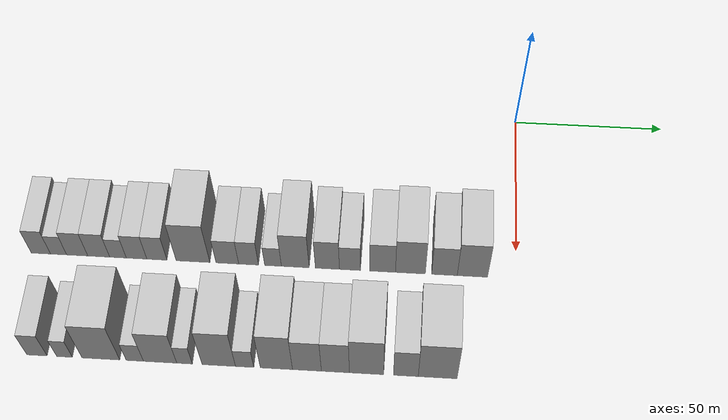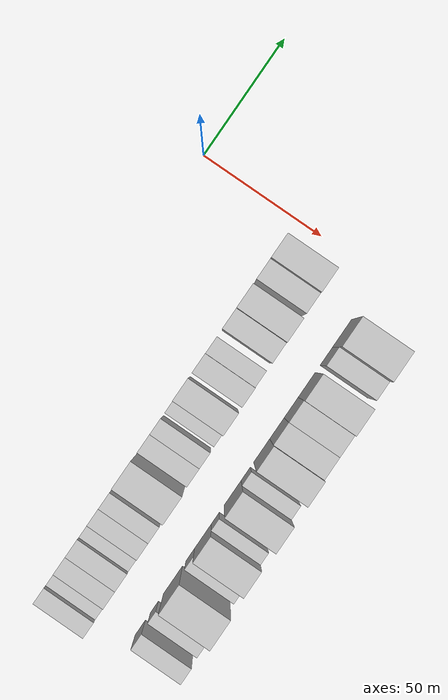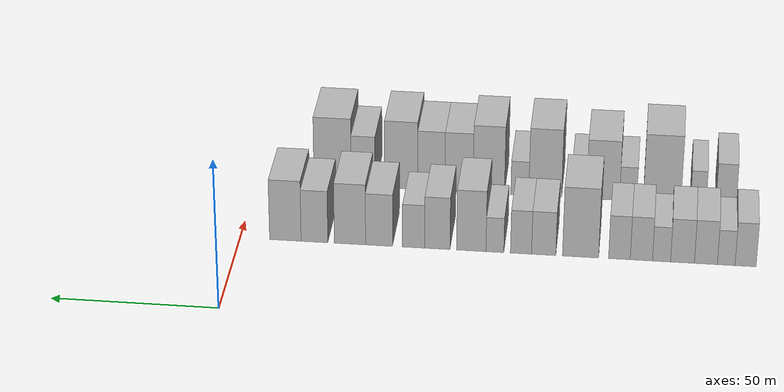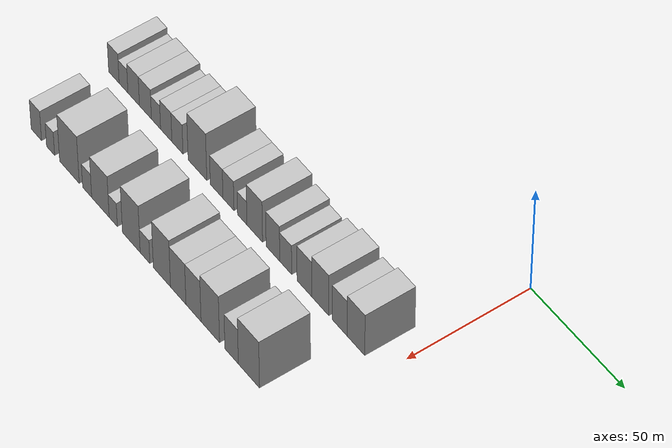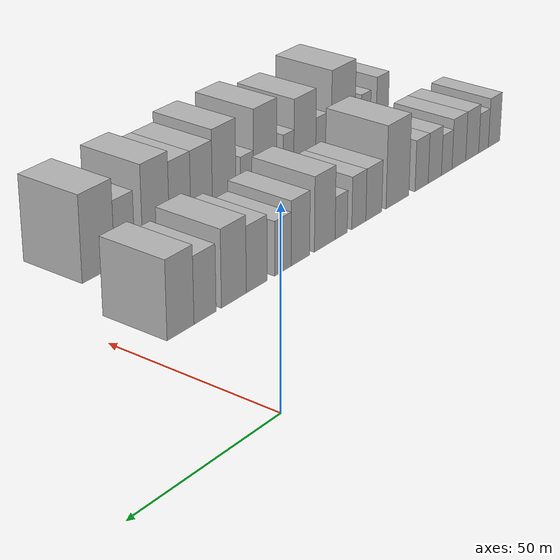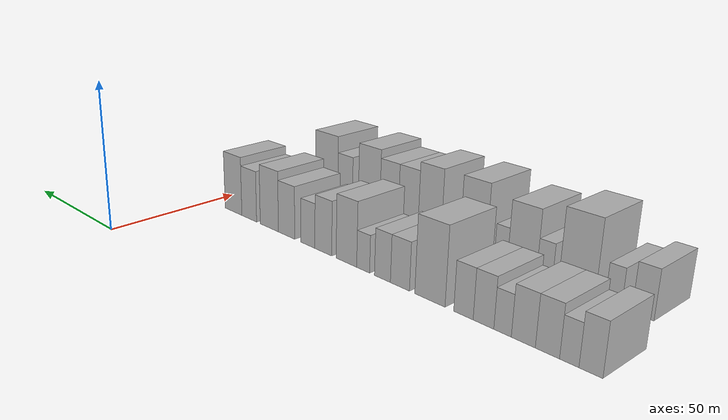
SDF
<sdf version="1.6">
 <world name="default">
  <model name="building_15">
   <static>1</static>
   <pose>50.0000 -153.3467 0 0.000000 0.000000 0.000000</pose>
   <link name="link">
    <pose>0 0 7.50 0 0 0</pose>
    <collision name="collision"><geometry><box><size>20.0000 6.2819 15.0000</size></box></geometry></collision>
    <visual name="visual">
     <cast_shadows>0</cast_shadows>
     <geometry><box><size>20.0000 6.2819 15.0000</size></box></geometry>
     <material>
      <script>
       <uri>model://HANNAS_wall/materials/scripts</uri>
       <uri>model://HANNAS_wall/materials/textures</uri>
       <name>vrc/HANNAS_wall</name>
      </script>
     </material>
    </visual>
   </link>
  </model>
  <model name="building_16">
   <static>1</static>
   <pose>50.0000 -147.5695 0 0.000000 0.000000 0.000000</pose>
   <link name="link">
    <pose>0 0 6.00 0 0 0</pose>
    <collision name="collision"><geometry><box><size>20.0000 5.2724 12.0000</size></box></geometry></collision>
    <visual name="visual">
     <cast_shadows>0</cast_shadows>
     <geometry><box><size>20.0000 5.2724 12.0000</size></box></geometry>
     <material>
      <script>
       <uri>model://HANNAS_wall/materials/scripts</uri>
       <uri>model://HANNAS_wall/materials/textures</uri>
       <name>vrc/HANNAS_wall</name>
      </script>
     </material>
    </visual>
   </link>
  </model>
  <model name="building_17">
   <static>1</static>
   <pose>50.0000 -141.4911 0 0.000000 0.000000 0.000000</pose>
   <link name="link">
    <pose>0 0 7.50 0 0 0</pose>
    <collision name="collision"><geometry><box><size>20.0000 6.8844 15.0000</size></box></geometry></collision>
    <visual name="visual">
     <cast_shadows>0</cast_shadows>
     <geometry><box><size>20.0000 6.8844 15.0000</size></box></geometry>
     <material>
      <script>
       <uri>model://HANNAS_wall/materials/scripts</uri>
       <uri>model://HANNAS_wall/materials/textures</uri>
       <name>vrc/HANNAS_wall</name>
      </script>
     </material>
    </visual>
   </link>
  </model>
  <model name="building_18">
   <static>1</static>
   <pose>50.0000 -134.4812 0 0.000000 0.000000 0.000000</pose>
   <link name="link">
    <pose>0 0 7.50 0 0 0</pose>
    <collision name="collision"><geometry><box><size>20.0000 7.1355 15.0000</size></box></geometry></collision>
    <visual name="visual">
     <cast_shadows>0</cast_shadows>
     <geometry><box><size>20.0000 7.1355 15.0000</size></box></geometry>
     <material>
      <script>
       <uri>model://HANNAS_wall/materials/scripts</uri>
       <uri>model://HANNAS_wall/materials/textures</uri>
       <name>vrc/HANNAS_wall</name>
      </script>
     </material>
    </visual>
   </link>
  </model>
  <model name="building_19">
   <static>1</static>
   <pose>50.0000 -128.2064 0 0.000000 0.000000 0.000000</pose>
   <link name="link">
    <pose>0 0 6.00 0 0 0</pose>
    <collision name="collision"><geometry><box><size>20.0000 5.4142 12.0000</size></box></geometry></collision>
    <visual name="visual">
     <cast_shadows>0</cast_shadows>
     <geometry><box><size>20.0000 5.4142 12.0000</size></box></geometry>
     <material>
      <script>
       <uri>model://HANNAS_wall/materials/scripts</uri>
       <uri>model://HANNAS_wall/materials/textures</uri>
       <name>vrc/HANNAS_wall</name>
      </script>
     </material>
    </visual>
   </link>
  </model>
  <model name="building_20">
   <static>1</static>
   <pose>50.0000 -122.1646 0 0.000000 0.000000 0.000000</pose>
   <link name="link">
    <pose>0 0 7.50 0 0 0</pose>
    <collision name="collision"><geometry><box><size>20.0000 6.6693 15.0000</size></box></geometry></collision>
    <visual name="visual">
     <cast_shadows>0</cast_shadows>
     <geometry><box><size>20.0000 6.6693 15.0000</size></box></geometry>
     <material>
      <script>
       <uri>model://HANNAS_wall/materials/scripts</uri>
       <uri>model://HANNAS_wall/materials/textures</uri>
       <name>vrc/HANNAS_wall</name>
      </script>
     </material>
    </visual>
   </link>
  </model>
  <model name="building_21">
   <static>1</static>
   <pose>50.0000 -115.5677 0 0.000000 0.000000 0.000000</pose>
   <link name="link">
    <pose>0 0 7.50 0 0 0</pose>
    <collision name="collision"><geometry><box><size>20.0000 6.5244 15.0000</size></box></geometry></collision>
    <visual name="visual">
     <cast_shadows>0</cast_shadows>
     <geometry><box><size>20.0000 6.5244 15.0000</size></box></geometry>
     <material>
      <script>
       <uri>model://HANNAS_wall/materials/scripts</uri>
       <uri>model://HANNAS_wall/materials/textures</uri>
       <name>vrc/HANNAS_wall</name>
      </script>
     </material>
    </visual>
   </link>
  </model>
  <model name="building_22">
   <static>1</static>
   <pose>50.0000 -103.8464 0 0.000000 0.000000 0.000000</pose>
   <link name="link">
    <pose>0 0 12.00 0 0 0</pose>
    <collision name="collision"><geometry><box><size>20.0000 10.9184 24.0000</size></box></geometry></collision>
    <visual name="visual">
     <cast_shadows>0</cast_shadows>
     <geometry><box><size>20.0000 10.9184 24.0000</size></box></geometry>
     <material>
      <script>
       <uri>model://HANNAS_wall/materials/scripts</uri>
       <uri>model://HANNAS_wall/materials/textures</uri>
       <name>vrc/HANNAS_wall</name>
      </script>
     </material>
    </visual>
   </link>
  </model>
  <model name="building_23">
   <static>1</static>
   <pose>50.0000 -92.7179 0 0.000000 0.000000 0.000000</pose>
   <link name="link">
    <pose>0 0 7.50 0 0 0</pose>
    <collision name="collision"><geometry><box><size>20.0000 7.3385 15.0000</size></box></geometry></collision>
    <visual name="visual">
     <cast_shadows>0</cast_shadows>
     <geometry><box><size>20.0000 7.3385 15.0000</size></box></geometry>
     <material>
      <script>
       <uri>model://HANNAS_wall/materials/scripts</uri>
       <uri>model://HANNAS_wall/materials/textures</uri>
       <name>vrc/HANNAS_wall</name>
      </script>
     </material>
    </visual>
   </link>
  </model>
  <model name="building_24">
   <static>1</static>
   <pose>50.0000 -85.8513 0 0.000000 0.000000 0.000000</pose>
   <link name="link">
    <pose>0 0 7.50 0 0 0</pose>
    <collision name="collision"><geometry><box><size>20.0000 6.3947 15.0000</size></box></geometry></collision>
    <visual name="visual">
     <cast_shadows>0</cast_shadows>
     <geometry><box><size>20.0000 6.3947 15.0000</size></box></geometry>
     <material>
      <script>
       <uri>model://HANNAS_wall/materials/scripts</uri>
       <uri>model://HANNAS_wall/materials/textures</uri>
       <name>vrc/HANNAS_wall</name>
      </script>
     </material>
    </visual>
   </link>
  </model>
  <model name="building_25">
   <static>1</static>
   <pose>50.0000 -77.9484 0 0.000000 0.000000 0.000000</pose>
   <link name="link">
    <pose>0 0 6.00 0 0 0</pose>
    <collision name="collision"><geometry><box><size>20.0000 5.4112 12.0000</size></box></geometry></collision>
    <visual name="visual">
     <cast_shadows>0</cast_shadows>
     <geometry><box><size>20.0000 5.4112 12.0000</size></box></geometry>
     <material>
      <script>
       <uri>model://HANNAS_wall/materials/scripts</uri>
       <uri>model://HANNAS_wall/materials/textures</uri>
       <name>vrc/HANNAS_wall</name>
      </script>
     </material>
    </visual>
   </link>
  </model>
  <model name="building_26">
   <static>1</static>
   <pose>50.0000 -70.7677 0 0.000000 0.000000 0.000000</pose>
   <link name="link">
    <pose>0 0 10.50 0 0 0</pose>
    <collision name="collision"><geometry><box><size>20.0000 8.9503 21.0000</size></box></geometry></collision>
    <visual name="visual">
     <cast_shadows>0</cast_shadows>
     <geometry><box><size>20.0000 8.9503 21.0000</size></box></geometry>
     <material>
      <script>
       <uri>model://HANNAS_wall/materials/scripts</uri>
       <uri>model://HANNAS_wall/materials/textures</uri>
       <name>vrc/HANNAS_wall</name>
      </script>
     </material>
    </visual>
   </link>
  </model>
  <model name="building_27">
   <static>1</static>
   <pose>50.0000 -60.4169 0 0.000000 0.000000 0.000000</pose>
   <link name="link">
    <pose>0 0 9.00 0 0 0</pose>
    <collision name="collision"><geometry><box><size>20.0000 7.7512 18.0000</size></box></geometry></collision>
    <visual name="visual">
     <cast_shadows>0</cast_shadows>
     <geometry><box><size>20.0000 7.7512 18.0000</size></box></geometry>
     <material>
      <script>
       <uri>model://HANNAS_wall/materials/scripts</uri>
       <uri>model://HANNAS_wall/materials/textures</uri>
       <name>vrc/HANNAS_wall</name>
      </script>
     </material>
    </visual>
   </link>
  </model>
  <model name="building_28">
   <static>1</static>
   <pose>50.0000 -53.1641 0 0.000000 0.000000 0.000000</pose>
   <link name="link">
    <pose>0 0 7.50 0 0 0</pose>
    <collision name="collision"><geometry><box><size>20.0000 6.7545 15.0000</size></box></geometry></collision>
    <visual name="visual">
     <cast_shadows>0</cast_shadows>
     <geometry><box><size>20.0000 6.7545 15.0000</size></box></geometry>
     <material>
      <script>
       <uri>model://HANNAS_wall/materials/scripts</uri>
       <uri>model://HANNAS_wall/materials/textures</uri>
       <name>vrc/HANNAS_wall</name>
      </script>
     </material>
    </visual>
   </link>
  </model>
  <model name="building_29">
   <static>1</static>
   <pose>50.0000 -42.6650 0 0.000000 0.000000 0.000000</pose>
   <link name="link">
    <pose>0 0 9.00 0 0 0</pose>
    <collision name="collision"><geometry><box><size>20.0000 8.2437 18.0000</size></box></geometry></collision>
    <visual name="visual">
     <cast_shadows>0</cast_shadows>
     <geometry><box><size>20.0000 8.2437 18.0000</size></box></geometry>
     <material>
      <script>
       <uri>model://HANNAS_wall/materials/scripts</uri>
       <uri>model://HANNAS_wall/materials/textures</uri>
       <name>vrc/HANNAS_wall</name>
      </script>
     </material>
    </visual>
   </link>
  </model>
  <model name="building_30">
   <static>1</static>
   <pose>50.0000 -33.7552 0 0.000000 0.000000 0.000000</pose>
   <link name="link">
    <pose>0 0 10.50 0 0 0</pose>
    <collision name="collision"><geometry><box><size>20.0000 9.5758 21.0000</size></box></geometry></collision>
    <visual name="visual">
     <cast_shadows>0</cast_shadows>
     <geometry><box><size>20.0000 9.5758 21.0000</size></box></geometry>
     <material>
      <script>
       <uri>model://HANNAS_wall/materials/scripts</uri>
       <uri>model://HANNAS_wall/materials/textures</uri>
       <name>vrc/HANNAS_wall</name>
      </script>
     </material>
    </visual>
   </link>
  </model>
  <model name="building_31">
   <static>1</static>
   <pose>50.0000 -22.8692 0 0.000000 0.000000 0.000000</pose>
   <link name="link">
    <pose>0 0 9.00 0 0 0</pose>
    <collision name="collision"><geometry><box><size>20.0000 8.1962 18.0000</size></box></geometry></collision>
    <visual name="visual">
     <cast_shadows>0</cast_shadows>
     <geometry><box><size>20.0000 8.1962 18.0000</size></box></geometry>
     <material>
      <script>
       <uri>model://HANNAS_wall/materials/scripts</uri>
       <uri>model://HANNAS_wall/materials/textures</uri>
       <name>vrc/HANNAS_wall</name>
      </script>
     </material>
    </visual>
   </link>
  </model>
  <model name="building_32">
   <static>1</static>
   <pose>50.0000 -13.9225 0 0.000000 0.000000 0.000000</pose>
   <link name="link">
    <pose>0 0 10.50 0 0 0</pose>
    <collision name="collision"><geometry><box><size>20.0000 9.6973 21.0000</size></box></geometry></collision>
    <visual name="visual">
     <cast_shadows>0</cast_shadows>
     <geometry><box><size>20.0000 9.6973 21.0000</size></box></geometry>
     <material>
      <script>
       <uri>model://HANNAS_wall/materials/scripts</uri>
       <uri>model://HANNAS_wall/materials/textures</uri>
       <name>vrc/HANNAS_wall</name>
      </script>
     </material>
    </visual>
   </link>
  </model>
  <model name="building_84">
   <static>1</static>
   <pose>85.0000 -147.5368 0 0.000000 0.000000 0.000000</pose>
   <link name="link">
    <pose>0 0 7.50 0 0 0</pose>
    <collision name="collision"><geometry><box><size>20.0000 6.2699 15.0000</size></box></geometry></collision>
    <visual name="visual">
     <cast_shadows>0</cast_shadows>
     <geometry><box><size>20.0000 6.2699 15.0000</size></box></geometry>
     <material>
      <script>
       <uri>model://HANNAS_wall/materials/scripts</uri>
       <uri>model://HANNAS_wall/materials/textures</uri>
       <name>vrc/HANNAS_wall</name>
      </script>
     </material>
    </visual>
   </link>
  </model>
  <model name="building_85">
   <static>1</static>
   <pose>85.0000 -138.9657 0 0.000000 0.000000 0.000000</pose>
   <link name="link">
    <pose>0 0 6.00 0 0 0</pose>
    <collision name="collision"><geometry><box><size>20.0000 4.8723 12.0000</size></box></geometry></collision>
    <visual name="visual">
     <cast_shadows>0</cast_shadows>
     <geometry><box><size>20.0000 4.8723 12.0000</size></box></geometry>
     <material>
      <script>
       <uri>model://HANNAS_wall/materials/scripts</uri>
       <uri>model://HANNAS_wall/materials/textures</uri>
       <name>vrc/HANNAS_wall</name>
      </script>
     </material>
    </visual>
   </link>
  </model>
  <model name="building_86">
   <static>1</static>
   <pose>85.0000 -127.6706 0 0.000000 0.000000 0.000000</pose>
   <link name="link">
    <pose>0 0 12.00 0 0 0</pose>
    <collision name="collision"><geometry><box><size>20.0000 11.7180 24.0000</size></box></geometry></collision>
    <visual name="visual">
     <cast_shadows>0</cast_shadows>
     <geometry><box><size>20.0000 11.7180 24.0000</size></box></geometry>
     <material>
      <script>
       <uri>model://HANNAS_wall/materials/scripts</uri>
       <uri>model://HANNAS_wall/materials/textures</uri>
       <name>vrc/HANNAS_wall</name>
      </script>
     </material>
    </visual>
   </link>
  </model>
  <model name="building_87">
   <static>1</static>
   <pose>85.0000 -117.1279 0 0.000000 0.000000 0.000000</pose>
   <link name="link">
    <pose>0 0 6.00 0 0 0</pose>
    <collision name="collision"><geometry><box><size>20.0000 5.3674 12.0000</size></box></geometry></collision>
    <visual name="visual">
     <cast_shadows>0</cast_shadows>
     <geometry><box><size>20.0000 5.3674 12.0000</size></box></geometry>
     <material>
      <script>
       <uri>model://HANNAS_wall/materials/scripts</uri>
       <uri>model://HANNAS_wall/materials/textures</uri>
       <name>vrc/HANNAS_wall</name>
      </script>
     </material>
    </visual>
   </link>
  </model>
  <model name="building_88">
   <static>1</static>
   <pose>85.0000 -109.2899 0 0.000000 0.000000 0.000000</pose>
   <link name="link">
    <pose>0 0 10.50 0 0 0</pose>
    <collision name="collision"><geometry><box><size>20.0000 10.3087 21.0000</size></box></geometry></collision>
    <visual name="visual">
     <cast_shadows>0</cast_shadows>
     <geometry><box><size>20.0000 10.3087 21.0000</size></box></geometry>
     <material>
      <script>
       <uri>model://HANNAS_wall/materials/scripts</uri>
       <uri>model://HANNAS_wall/materials/textures</uri>
       <name>vrc/HANNAS_wall</name>
      </script>
     </material>
    </visual>
   </link>
  </model>
  <model name="building_89">
   <static>1</static>
   <pose>85.0000 -101.7252 0 0.000000 0.000000 0.000000</pose>
   <link name="link">
    <pose>0 0 6.00 0 0 0</pose>
    <collision name="collision"><geometry><box><size>20.0000 4.8205 12.0000</size></box></geometry></collision>
    <visual name="visual">
     <cast_shadows>0</cast_shadows>
     <geometry><box><size>20.0000 4.8205 12.0000</size></box></geometry>
     <material>
      <script>
       <uri>model://HANNAS_wall/materials/scripts</uri>
       <uri>model://HANNAS_wall/materials/textures</uri>
       <name>vrc/HANNAS_wall</name>
      </script>
     </material>
    </visual>
   </link>
  </model>
  <model name="building_90">
   <static>1</static>
   <pose>85.0000 -91.1548 0 0.000000 0.000000 0.000000</pose>
   <link name="link">
    <pose>0 0 12.00 0 0 0</pose>
    <collision name="collision"><geometry><box><size>20.0000 10.3204 24.0000</size></box></geometry></collision>
    <visual name="visual">
     <cast_shadows>0</cast_shadows>
     <geometry><box><size>20.0000 10.3204 24.0000</size></box></geometry>
     <material>
      <script>
       <uri>model://HANNAS_wall/materials/scripts</uri>
       <uri>model://HANNAS_wall/materials/textures</uri>
       <name>vrc/HANNAS_wall</name>
      </script>
     </material>
    </visual>
   </link>
  </model>
  <model name="building_91">
   <static>1</static>
   <pose>85.0000 -83.1729 0 0.000000 0.000000 0.000000</pose>
   <link name="link">
    <pose>0 0 6.00 0 0 0</pose>
    <collision name="collision"><geometry><box><size>20.0000 5.6435 12.0000</size></box></geometry></collision>
    <visual name="visual">
     <cast_shadows>0</cast_shadows>
     <geometry><box><size>20.0000 5.6435 12.0000</size></box></geometry>
     <material>
      <script>
       <uri>model://HANNAS_wall/materials/scripts</uri>
       <uri>model://HANNAS_wall/materials/textures</uri>
       <name>vrc/HANNAS_wall</name>
      </script>
     </material>
    </visual>
   </link>
  </model>
  <model name="building_92">
   <static>1</static>
   <pose>85.0000 -73.3948 0 0.000000 0.000000 0.000000</pose>
   <link name="link">
    <pose>0 0 12.00 0 0 0</pose>
    <collision name="collision"><geometry><box><size>20.0000 9.9127 24.0000</size></box></geometry></collision>
    <visual name="visual">
     <cast_shadows>0</cast_shadows>
     <geometry><box><size>20.0000 9.9127 24.0000</size></box></geometry>
     <material>
      <script>
       <uri>model://HANNAS_wall/materials/scripts</uri>
       <uri>model://HANNAS_wall/materials/textures</uri>
       <name>vrc/HANNAS_wall</name>
      </script>
     </material>
    </visual>
   </link>
  </model>
  <model name="building_93">
   <static>1</static>
   <pose>85.0000 -63.9977 0 0.000000 0.000000 0.000000</pose>
   <link name="link">
    <pose>0 0 10.50 0 0 0</pose>
    <collision name="collision"><geometry><box><size>20.0000 8.8815 21.0000</size></box></geometry></collision>
    <visual name="visual">
     <cast_shadows>0</cast_shadows>
     <geometry><box><size>20.0000 8.8815 21.0000</size></box></geometry>
     <material>
      <script>
       <uri>model://HANNAS_wall/materials/scripts</uri>
       <uri>model://HANNAS_wall/materials/textures</uri>
       <name>vrc/HANNAS_wall</name>
      </script>
     </material>
    </visual>
   </link>
  </model>
  <model name="building_94">
   <static>1</static>
   <pose>85.0000 -55.2545 0 0.000000 0.000000 0.000000</pose>
   <link name="link">
    <pose>0 0 10.50 0 0 0</pose>
    <collision name="collision"><geometry><box><size>20.0000 8.6048 21.0000</size></box></geometry></collision>
    <visual name="visual">
     <cast_shadows>0</cast_shadows>
     <geometry><box><size>20.0000 8.6048 21.0000</size></box></geometry>
     <material>
      <script>
       <uri>model://HANNAS_wall/materials/scripts</uri>
       <uri>model://HANNAS_wall/materials/textures</uri>
       <name>vrc/HANNAS_wall</name>
      </script>
     </material>
    </visual>
   </link>
  </model>
  <model name="building_95">
   <static>1</static>
   <pose>85.0000 -45.7038 0 0.000000 0.000000 0.000000</pose>
   <link name="link">
    <pose>0 0 12.00 0 0 0</pose>
    <collision name="collision"><geometry><box><size>20.0000 10.4966 24.0000</size></box></geometry></collision>
    <visual name="visual">
     <cast_shadows>0</cast_shadows>
     <geometry><box><size>20.0000 10.4966 24.0000</size></box></geometry>
     <material>
      <script>
       <uri>model://HANNAS_wall/materials/scripts</uri>
       <uri>model://HANNAS_wall/materials/textures</uri>
       <name>vrc/HANNAS_wall</name>
      </script>
     </material>
    </visual>
   </link>
  </model>
  <model name="building_96">
   <static>1</static>
   <pose>85.0000 -33.6743 0 0.000000 0.000000 0.000000</pose>
   <link name="link">
    <pose>0 0 9.00 0 0 0</pose>
    <collision name="collision"><geometry><box><size>20.0000 7.5624 18.0000</size></box></geometry></collision>
    <visual name="visual">
     <cast_shadows>0</cast_shadows>
     <geometry><box><size>20.0000 7.5624 18.0000</size></box></geometry>
     <material>
      <script>
       <uri>model://HANNAS_wall/materials/scripts</uri>
       <uri>model://HANNAS_wall/materials/textures</uri>
       <name>vrc/HANNAS_wall</name>
      </script>
     </material>
    </visual>
   </link>
  </model>
  <model name="building_97">
   <static>1</static>
   <pose>85.0000 -23.9646 0 0.000000 0.000000 0.000000</pose>
   <link name="link">
    <pose>0 0 12.00 0 0 0</pose>
    <collision name="collision"><geometry><box><size>20.0000 11.8571 24.0000</size></box></geometry></collision>
    <visual name="visual">
     <cast_shadows>0</cast_shadows>
     <geometry><box><size>20.0000 11.8571 24.0000</size></box></geometry>
     <material>
      <script>
       <uri>model://HANNAS_wall/materials/scripts</uri>
       <uri>model://HANNAS_wall/materials/textures</uri>
       <name>vrc/HANNAS_wall</name>
      </script>
     </material>
    </visual>
   </link>
  </model>
 </world>
</sdf>
